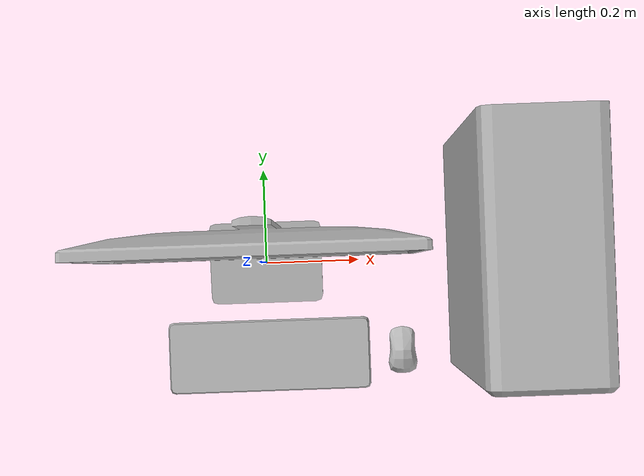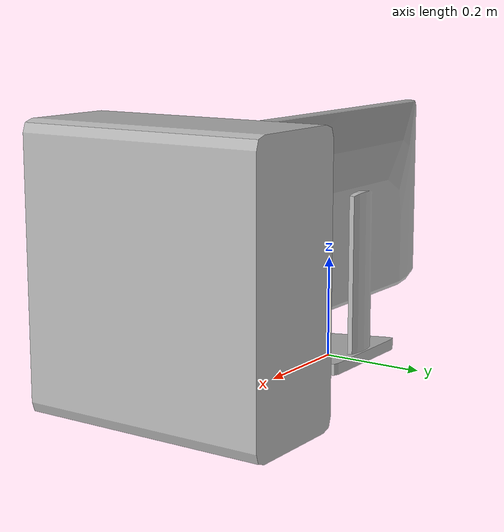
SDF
<?xml version="1.0" ?>
<sdf version="1.5">
  <model name="computer">
    <static>true</static>
    <link name="monitor">
      <visual name="visual">
        <geometry>
          <mesh>
            <uri>model://computer/meshes/computer_monitor.obj</uri>
            <scale>0.01 0.01 0.01</scale>
          </mesh>
        </geometry>
      </visual>
    </link>
    <link name="tower">
      <pose>0.5 0 0 0 0 0</pose>
      <visual name="visual">
        <geometry>
          <mesh>
            <uri>model://computer/meshes/computer_tower.obj</uri>
            <scale>0.01 0.01 0.01</scale>
          </mesh>
        </geometry>
      </visual>
    </link>
  </model>
</sdf>
